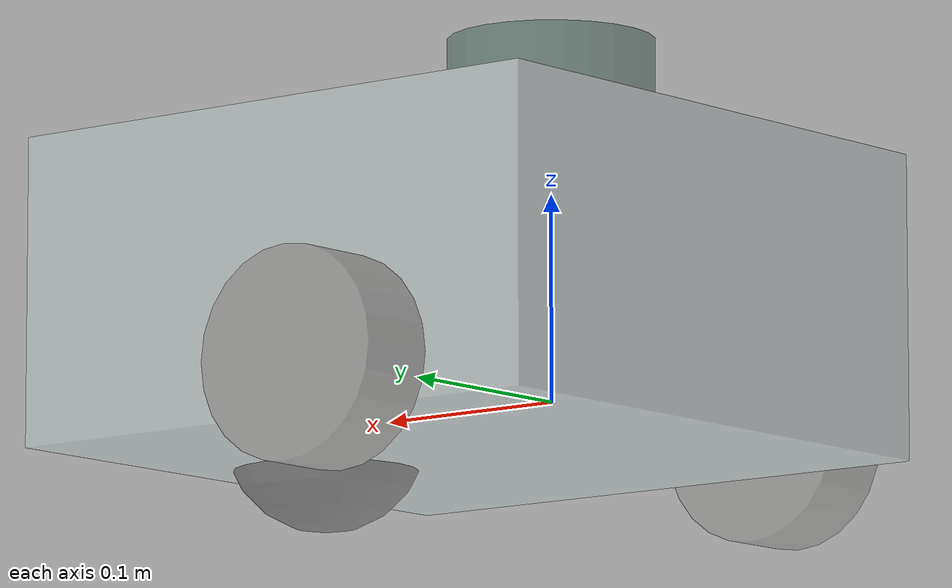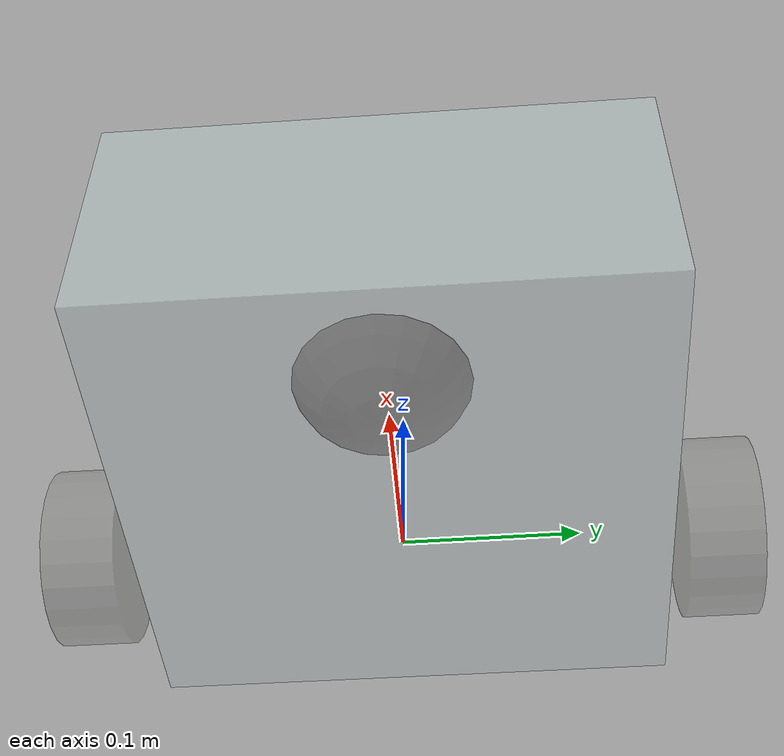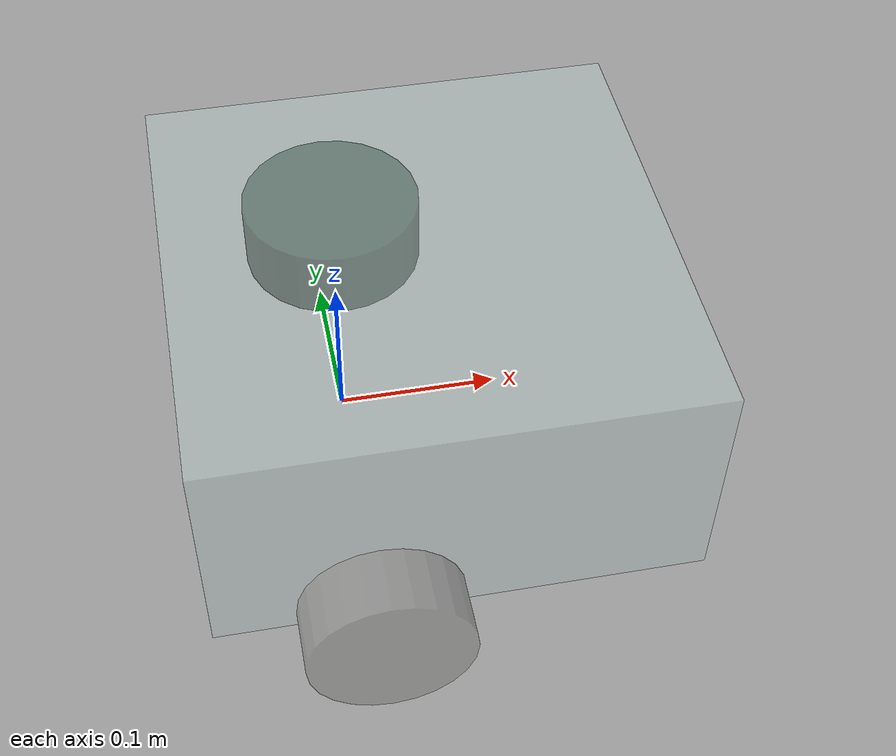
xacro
<?xml version="1.0"?>
<robot xmlns:xacro="http://www.ros.org/wiki/xacro"  name="robot">

    <xacro:include filename="inertial_macros.xacro" /> <!--intertia-->
    <xacro:include filename="colours.xacro" />

    <xacro:include filename="robot_core.xacro" />
    <xacro:include filename="lidar.xacro" />

    <!--un/comment gazebo_control.xacro for gazebo simulation-->
    <!--xacro:include filename="gazebo_control.xacro" /-->
    <xacro:include filename="ros2_control.xacro" />

</robot>

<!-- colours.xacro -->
<robot xmlns:xacro="http://www.ros.org/wiki/xacro"> #<!--without name-->
<!-- jeden Wert durch 255 teilen, da der höchste Wert, den ein einzelner Farbkanal haben kann -->

<material name="white">
    <color rgba="1 1 1 1"/>
</material>

<material name="orange">
    <color rgba="1 0.3 0.1 1"/>
</material>

<material name="blue">
    <color rgba="0.2 0.2 1 1"/>
</material>

<material name="black">
    <color rgba="0 0 0 1"/>
</material>

<material name="red">
    <color rgba="1 0 0 1"/>
</material>

<material name="random1">
    <color rgba="0.2 0.8 1 1"/>
</material>

<material name="random2">
    <color rgba="1 0.2 0.6 0.1"/>
</material>

<material name="azure_web">
    <color rgba="0 0.5 1 0.5"/>
</material>

<material name="black_olive">
    <color rgba="0.23 0.24 0.21 0.5"/>
</material>

<!-- Roboter Modell -->

<material name="feldgrau">
    <color rgba="0.8 0.9 0.9 0.3"/>
</material>

<material name="brunswick_green">
    <color rgba="0.11 0.30 0.24 0.4"/>
</material>

<material name="battleship_gray">
    <color rgba="0.52 0.52 0.51 0.4"/>
</material>

<material name="jet">
    <color rgba="0.2 0.2 0.2 0.4"/>
</material>

</robot>

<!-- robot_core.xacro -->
<robot xmlns:xacro="http://www.ros.org/wiki/xacro"> <!--without name-->
<!--0. include core File into robot.urdf.xacro
  ; 1. specify links
  ; 2. colours
  ; 3. base Link
  ; 4. chassis
  ; 5. drive wheels
  ; 6. collision
  ; 7. inertia-->

<!--....................xacro variables declaration..........................-->

<xacro:property name="chassis_length" value="0.3"/>
<xacro:property name="chassis_width" value="0.3"/>
<xacro:property name="chassis_depth" value="0.15"/>
<xacro:property name="chassis_mass" value="0.5"/>

<xacro:property name="wheel_offset_x" value="0.1 "/> <!--connect to base_link tf-->
<xacro:property name="wheel_offset_y" value="0.175"/>
<xacro:property name="wheel_offset_z" value="0.02"/>
<xacro:property name="wheel_radius" value="0.05"/>
<xacro:property name="wheel_thickness" value="0.04"/>
<xacro:property name="wheel_mass" value="0.1"/>

<xacro:property name="caster_wheel_radius" value="0.05"/>
<xacro:property name="caster_wheel_mass" value="0.1"/>
<xacro:property name="caster_wheel_offset_x" value="0.24"/>
<xacro:property name="caster_wheel_offset_z" value="${wheel_offset_z - wheel_radius + caster_wheel_radius}"/>

        <!--... all the joint and link names will go in here ... -->
    <link name="base_link">
    </link>

    <joint name="base_footprint_joint" type="fixed">
        <parent link="base_link"/>
        <child link="base_footprint"/>
        <!-- base_link not actually "on the ground", so z0 = wheelAxis ; z0 = z at zero-->
        <origin xyz="0 0 0" rpy="0 0 0"/>
    </joint>

    <link name="base_footprint">
    </link>

            <!--... CHASSIS LINK... -->
    <!--fixed joint: chassis link connected to base_link-->
    <joint name="chassis_joint" type="fixed">
        <parent link="base_link"/>
        <child link="chassis"/>
        <origin xyz="-${wheel_offset_x} 0 -${wheel_offset_z}"/>
    </joint>

    <link name="chassis">
        <visual>
            <!--set back reference point, bottom-rear-centre of the chassis -->
            <origin xyz="${chassis_length/2} 0 ${chassis_depth/2}" rpy="0 0 0"/>
            <geometry>
                <box size="${chassis_length} ${chassis_width} ${chassis_depth}"/>
            </geometry>
            <material name="feldgrau"/>
        </visual>
        <!--collision-->
        <collision>
            <origin xyz="${chassis_length/2} 0 ${chassis_depth/2}" rpy="0 0 0"/>
            <geometry>
                <box size="${chassis_length} ${chassis_width} ${chassis_depth}"/>
            </geometry> <!--no material needed-->
        </collision>
        <!--inertia-->
        <xacro:inertial_box mass="${chassis_mass}" x="${chassis_length}" y="${chassis_width}" z="${chassis_depth}">
            <origin xyz="${chassis_length/2} 0 ${chassis_depth/2}" rpy="0 0 0"/>
        </xacro:inertial_box>
    </link>

    <!--specify Gazebo for each link.-->
    <gazebo reference="chassis">
        <!--Gazebo uses different material/colour system as RViz.-->
        <material>Gazebo/BuildingFrame</material>
    </gazebo>

            <!--... WHEELS ... -->
    <!--continuous joint: wheel connected to chassis link & base_link-->
    <!--ROS though, cylinders by default oriented along Z axis.-->
    <!--“roll” cylinder by quarter-turn around the X axis.-->
    <!-- LEFT WHEEL LINK -->
    <joint name="left_wheel_joint" type="continuous">
        <parent link="base_link"/>
        <child link="left_wheel"/>
        <!--first: rotate clockwise (negative) around X (−pi/2 rad) -->
        <!--after: move along +Y axis for wheels rotation axis -->
        <origin xyz="0 ${wheel_offset_y} 0" rpy="-${pi/2} 0 0" />
        <!--second: move along new Z-->
        <axis xyz="0 0 1"/>
    </joint>

    <link name="left_wheel">
        <visual>
            <geometry>
                <cylinder radius="${wheel_radius}" length="${wheel_thickness}"/>
            </geometry>
            <material name="battleship_gray"/>
        </visual>
        <!--collision-->
        <collision>
            <geometry>
                <cylinder radius="${wheel_radius}" length="${wheel_thickness}"/>
            </geometry> <!--no material needed-->
        </collision>
        <!--inertia-->
        <xacro:inertial_cylinder mass="${wheel_mass}" length="${wheel_radius}" radius="${wheel_thickness}">
            <origin xyz="0 0 0" rpy="0 0 0"/>
        </xacro:inertial_cylinder>
    </link>

    <!--specify Gazebo for each link.-->
    <gazebo reference="left_wheel">
        <material>Gazebo/Wood</material>
    </gazebo>

    <!-- RIGHT WHEEL LINK-->
    <!--joint name="right_wheel_joint" type="fixed"> continuous -->
    <joint name="right_wheel_joint" type="continuous"> <!--contininuous need published joint states-->
        <parent link="base_link"/>
        <child link="right_wheel"/>
        <origin xyz="0 -${wheel_offset_y} 0" rpy="${pi/2} 0 0"/>
        <axis xyz="0 0 -1"/>
    </joint>

    <link name="right_wheel">
        <visual>
            <geometry>
                <cylinder radius="${wheel_radius}" length="${wheel_thickness}"/>
            </geometry>
            <material name="battleship_gray"/>
        </visual>
        <!--collision-->
        <collision>
            <geometry>
                <cylinder radius="${wheel_radius}" length="${wheel_thickness}"/>
            </geometry> <!--no material needed-->
        </collision>
        <!--inertia-->
        <xacro:inertial_cylinder mass="${wheel_mass}" length="${wheel_radius}" radius="${wheel_thickness}">
            <origin xyz="0 0 0" rpy="0 0 0"/>
        </xacro:inertial_cylinder>
    </link>

    <!--specify Gazebo for each link.-->
    <gazebo reference="right_wheel">
        <material>Gazebo/Wood</material>
    </gazebo>

    <!-- CASTER WHEEL LINK --><!-- OMNIWHEEL --><!-- 3and4 WHEEL -->
    <!--frictionless sphere with inertia-->
    <joint name="caster_wheel_joint" type="fixed">
        <parent link="chassis"/>
        <child link="caster_wheel"/>
        <origin xyz="${caster_wheel_offset_x} 0 ${caster_wheel_offset_z}" rpy="0 0 0"/>
    </joint>

    <link name="caster_wheel">
        <visual>
            <geometry>
                <sphere radius="${caster_wheel_radius}" />
            </geometry>
            <material name="jet"/>
        </visual>
        <!--collision-->
        <collision>
            <geometry>
                <sphere radius="${caster_wheel_radius}" />
            </geometry> <!--no material needed-->
        </collision>
        <!--inertia-->
        <xacro:inertial_sphere mass="${caster_wheel_mass}" radius="${caster_wheel_radius}">
            <origin xyz="0 0 0" rpy="0 0 0"/>
        </xacro:inertial_sphere>
    </link>

    <!--specify Gazebo for each link.-->
    <gazebo reference="caster_wheel">
        <material>Gazebo/CloudySky</material>
        <!--reducing friction, customise physical properties of the link-->
        <mu1 value="0.001"/>
        <mu2 value="0.001"/>
    </gazebo>

</robot>

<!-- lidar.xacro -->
<robot xmlns:xacro="http://www.ros.org/wiki/xacro" >

    <joint name="laser_joint" type="fixed">
        <parent link="chassis"/>
        <child link="laser_frame"/>
        <origin xyz="0.1 0 0.175" rpy="0 0 0"/>
    </joint>

    <link name="laser_frame">
    <visual>
        <geometry>
            <cylinder radius="0.05" length="0.04"/>
        </geometry>
        <material name="brunswick_green"/>
    </visual>
    <collision>
        <geometry>
            <cylinder radius="0.05" length="0.04"/>
        </geometry>
    </collision>
    <xacro:inertial_cylinder mass="0.1" length="0.04" radius="0.05">
        <origin xyz="0 0 0" rpy="0 0 0"/>
    </xacro:inertial_cylinder>
    </link>

    <gazebo reference="laser_frame">
        <material>Gazebo/Road</material> <!--DarkOrangeTransparentOverlay-->

        <sensor name="laser" type="ray"> <!--Add a ray sensor (lidar) to this link-->
            <pose> 0 0 0 0 0 0 </pose> <!--sensor origin at the link origin-->
            <visualize>true</visualize> <!--true for blue lines--> <!--Visualise the simulated measurements in the viewport-->
            <update_rate>10</update_rate> <!--Update virtual sensor at 10Hz-->
            <!--et these parameters to be as similar as possible to your actual lidar.-->
            <!--for 360° scanning with one ray per degree and a max range of 12m-->
            <ray>
                <scan>
                    <horizontal>
                        <samples>360</samples>
                        <min_angle>-3.14</min_angle>
                        <max_angle>3.14</max_angle>
                    </horizontal>
                </scan>
                <range>
                    <min>0.3</min>
                    <max>12</max>
                </range>
            </ray>

            <!--publish the data as a LaserScan message on the /scan topic, in the laser_frame TF frame.-->
            <plugin name="laser_controller" filename="libgazebo_ros_ray_sensor.so">
                <ros>
                    <argument>~/out:=scan</argument>
                </ros>
                <output_type>sensor_msgs/LaserScan</output_type>
                <frame_name>laser_frame</frame_name>
            </plugin>
        </sensor>
    </gazebo>
</robot>
